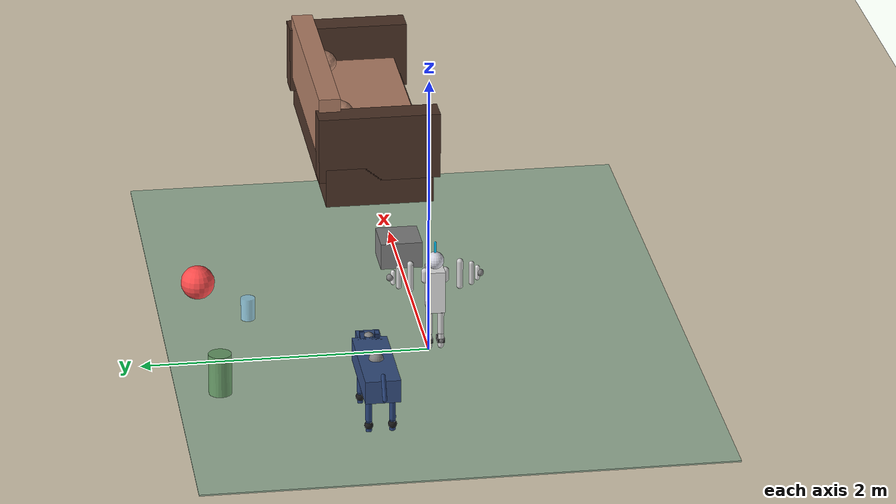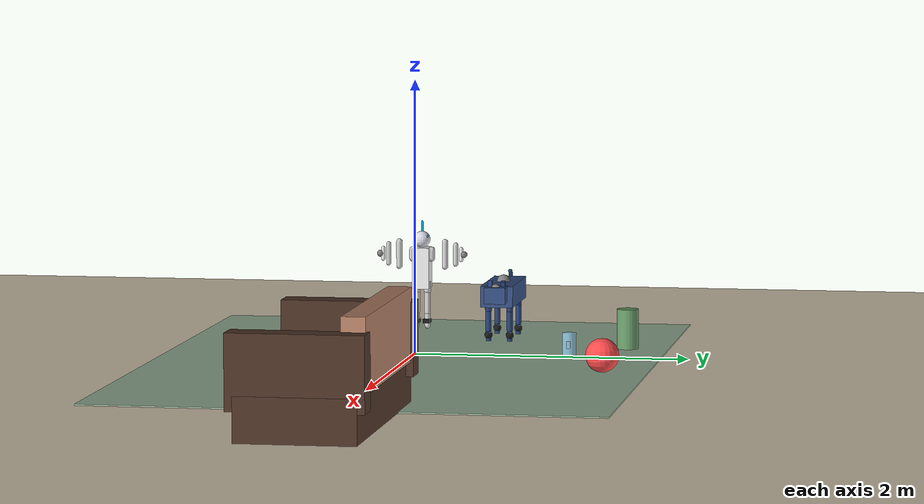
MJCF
<mujoco model="bionic_pet_companion">
  <compiler angle="degree" meshdir="../assets" autolimits="true"/>

  <visual>
    <headlight diffuse="0.6 0.6 0.6" ambient="0.3 0.3 0.3" specular="0.1 0.1 0.1"/>
    <map znear="0.01" zfar="50"/>
    <quality shadowsize="2048"/>
    <global offwidth="1280" offheight="720"/>
  </visual>

  <option timestep="0.002" gravity="0 0 -9.81" integrator="implicitfast">
    <flag contact="enable" gravity="enable"/>
  </option>

  <asset>
    <!-- Floor texture -->
    <texture name="tex_wood" type="2d" builtin="checker" width="512" height="512"
             rgb1="0.8 0.7 0.5" rgb2="0.7 0.6 0.4"/>
    <material name="mat_wood" texture="tex_wood" reflectance="0.1" shininess="0.3"/>
    <material name="mat_floor" rgba="0.85 0.8 0.7 1" reflectance="0.05"/>

    <!-- Robot materials -->
    <material name="mat_dog_body" rgba="0.2 0.3 0.5 1" specular="0.5" shininess="0.8"/>
    <material name="mat_dog_leg" rgba="0.15 0.25 0.45 1" specular="0.4" shininess="0.6"/>
    <material name="mat_dog_foot" rgba="0.1 0.1 0.1 1" specular="0.2" shininess="0.3"/>
    <material name="mat_dog_eye" rgba="0 1 0.8 1" emission="0.5"/>

    <material name="mat_human_body" rgba="0.9 0.9 0.9 1" specular="0.6" shininess="0.9"/>
    <material name="mat_human_head" rgba="0.85 0.85 0.9 1" specular="0.5" shininess="0.7"/>
    <material name="mat_human_eye" rgba="0 0.8 1 1" emission="0.5"/>
    <material name="mat_human_arm" rgba="0.8 0.8 0.8 1" specular="0.5" shininess="0.6"/>

    <!-- Sofa materials - soft plush look -->
    <material name="mat_sofa_cushion" rgba="0.7 0.5 0.4 1" specular="0.1" shininess="0.2"/>
    <material name="mat_sofa_frame" rgba="0.3 0.2 0.15 1" specular="0.3" shininess="0.5"/>
    <material name="mat_sofa_pillow" rgba="0.75 0.55 0.45 1" specular="0.1" shininess="0.1"/>

    <!-- Object materials -->
    <material name="mat_ball" rgba="1 0.3 0.3 1" specular="0.4" shininess="0.5"/>
    <material name="mat_cup" rgba="0.6 0.85 1 0.7" specular="0.8" shininess="1"/>
    <material name="mat_cup_water" rgba="0.4 0.7 1 0.6" specular="0.6" shininess="0.8"/>

    <!-- Soft/flex materials -->
    <material name="mat_flex_soft" rgba="0.9 0.5 0.4 1" specular="0.1" shininess="0.1"/>
    <material name="mat_plush" rgba="1 0.6 0.5 1" specular="0.05" shininess="0.05"/>
    <material name="mat_carpet" rgba="0.6 0.7 0.6 1" specular="0.05" shininess="0.05"/>
  </asset>

  <worldbody>
    <!-- ===== LIGHTING ===== -->
    <light name="light_main" pos="3 0 4" dir="0 0 -1" directional="true" diffuse="0.8 0.8 0.8" specular="0.2 0.2 0.2"/>
    <light name="light_fill" pos="-2 3 3" dir="0 0 -1" directional="true" diffuse="0.3 0.3 0.3" specular="0.05 0.05 0.05"/>
    <light name="light_ambient" pos="0 0 5" dir="0 0 -1" directional="true" diffuse="0.2 0.2 0.2"/>

    <!-- ===== FLOOR ===== -->
    <geom name="floor" type="plane" size="8 8 0.05" material="mat_floor" pos="0 0 0"
          friction="0.8 0.1 0.1" condim="3"/>

    <!-- ===== CARPET/RUG ===== -->
    <geom name="carpet" type="box" size="2.5 1.8 0.005" pos="0.5 0 0.002" material="mat_carpet"
          friction="1.0 0.2 0.1" condim="3"/>

    <!-- ===== SOFA (flexible composite) ===== -->
    <body name="sofa" pos="3.5 0 0">
      <!-- Sofa base frame -->
      <geom name="sofa_base" type="box" size="1.0 0.4 0.15" pos="0 0 0.15" material="mat_sofa_frame"/>

      <!-- Sofa seat cushion - soft contact for plush feel -->
      <geom name="sofa_seat" type="box" size="0.85 0.35 0.08" pos="0 0 0.35" material="mat_sofa_cushion"
            friction="0.9 0.1 0.05" solref="0.005 0.6" solimp="0.8 0.9 0.001" mass="2.0"/>

      <!-- Sofa backrest cushion - soft contact -->
      <geom name="sofa_backrest" type="box" size="0.85 0.08 0.25" pos="0 0.35 0.55" material="mat_sofa_cushion"
            friction="0.9 0.1 0.05" solref="0.005 0.6" solimp="0.8 0.9 0.001" mass="1.5"/>

      <!-- Left armrest -->
      <geom name="sofa_arm_left" type="box" size="0.1 0.45 0.25" pos="-0.9 0 0.45" material="mat_sofa_frame"/>

      <!-- Right armrest -->
      <geom name="sofa_arm_right" type="box" size="0.1 0.45 0.25" pos="0.9 0 0.45" material="mat_sofa_frame"/>
    </body>

    <!-- Decorative pillows on sofa -->
    <body name="pillow_left" pos="3.0 0.25 0.55">
      <freejoint/>
      <geom name="pillow_left_geom" type="ellipsoid" size="0.15 0.12 0.08" material="mat_sofa_pillow"
            friction="1.0 0.1 0.05" solref="0.005 0.8" solimp="0.9 0.95 0.001" mass="0.3"/>
    </body>

    <body name="pillow_right" pos="4.0 0.25 0.55">
      <freejoint/>
      <geom name="pillow_right_geom" type="ellipsoid" size="0.15 0.12 0.08" material="mat_sofa_pillow"
            friction="1.0 0.1 0.05" solref="0.005 0.8" solimp="0.9 0.95 0.001" mass="0.3"/>
    </body>

    <!-- ===== PLUSH TOY BALL ===== -->
    <body name="toy_ball" pos="1.0 1.5 0.15">
      <freejoint/>
      <geom name="ball_geom" type="sphere" size="0.12" material="mat_ball"
            friction="0.8 0.05 0.05" solref="0.005 0.8" solimp="0.8 0.95 0.001" mass="0.25"/>
    </body>

    <!-- ===== WATER CUP ===== -->
    <body name="cup" pos="0.5 1.2 0.08">
      <freejoint/>
      <!-- Cup body -->
      <geom name="cup_body" type="cylinder" size="0.05 0.08" pos="0 0 0.08" material="mat_cup"
            friction="0.5 0.05 0.05" mass="0.15"/>
      <!-- Water surface -->
      <geom name="cup_water" type="cylinder" size="0.04 0.005" pos="0 0 0.14" material="mat_cup_water"
            mass="0.02"/>
      <!-- Cup handle as a box -->
      <geom name="cup_handle" type="box" size="0.015 0.012 0.025" pos="0.06 0 0.08"
            material="mat_cup" mass="0.02"/>
    </body>

    <!-- ===== UNITREE GO1 ROBOT DOG ===== -->
    <body name="robot_dog" pos="-1.0 0.5 0.35">
      <joint name="dog_root" type="free"/>
      <inertial pos="0 0 0" mass="5.0" fullinertia="0.05 0.15 0.15 0 0 0"/>

      <!-- Main body -->
      <geom name="dog_body" type="box" size="0.35 0.12 0.08" material="mat_dog_body"
            friction="0.5 0.05 0.05"/>
      <!-- Head -->
      <geom name="dog_head" type="box" size="0.08 0.08 0.06" pos="0.38 0 0.02" material="mat_dog_body"/>
      <!-- Eyes -->
      <geom name="dog_eye_l" type="sphere" size="0.015" pos="0.42 0.04 0.05" material="mat_dog_eye"/>
      <geom name="dog_eye_r" type="sphere" size="0.015" pos="0.42 -0.04 0.05" material="mat_dog_eye"/>
      <!-- Ears -->
      <geom name="dog_ear_l" type="box" size="0.02 0.015 0.04" pos="0.35 0.05 0.08" euler="0 15 0" material="mat_dog_leg"/>
      <geom name="dog_ear_r" type="box" size="0.02 0.015 0.04" pos="0.35 -0.05 0.08" euler="0 -15 0" material="mat_dog_leg"/>
      <!-- Tail -->
      <geom name="dog_tail" type="capsule" size="0.015 0.08" pos="-0.39 0 0.05" euler="0 30 0" material="mat_dog_leg"/>

      <!-- ===== LEGS (each with 3 DOF: hip, thigh, knee) ===== -->
      <!-- FRONT LEFT LEG -->
      <body name="dog_fl_hip" pos="0.22 0.08 -0.05">
        <joint name="dog_fl_hip_x" type="hinge" axis="1 0 0" range="-30 30" armature="0.01"/>
        <joint name="dog_fl_hip_z" type="hinge" axis="0 0 1" range="-60 60" armature="0.01"/>
        <geom name="dog_fl_hip_geom" type="capsule" size="0.025 0.04" pos="0 0 -0.02" material="mat_dog_leg" friction="0.5 0.05 0.05"/>
        <body name="dog_fl_thigh" pos="0 0 -0.06">
          <joint name="dog_fl_knee" type="hinge" axis="0 1 0" range="-100 30" armature="0.01"/>
          <geom name="dog_fl_thigh_geom" type="capsule" size="0.022 0.1" pos="0 0 -0.05" material="mat_dog_leg" friction="0.5 0.05 0.05"/>
          <body name="dog_fl_shank" pos="0 0 -0.1">
            <geom name="dog_fl_shank_geom" type="capsule" size="0.02 0.09" pos="0 0 -0.04" material="mat_dog_leg" friction="0.5 0.05 0.05"/>
            <geom name="dog_fl_foot" type="sphere" size="0.03" pos="0 0 -0.09" material="mat_dog_foot"
                        friction="0.9 0.1 0.05" solref="0.005 0.7" solimp="0.8 0.9 0.001"/>
            <site name="dog_fl_touch" type="sphere" size="0.03" pos="0 0 -0.09"/>
          </body>
        </body>
      </body>

      <!-- FRONT RIGHT LEG -->
      <body name="dog_fr_hip" pos="0.22 -0.08 -0.05">
        <joint name="dog_fr_hip_x" type="hinge" axis="1 0 0" range="-30 30" armature="0.01"/>
        <joint name="dog_fr_hip_z" type="hinge" axis="0 0 1" range="-60 60" armature="0.01"/>
        <geom name="dog_fr_hip_geom" type="capsule" size="0.025 0.04" pos="0 0 -0.02" material="mat_dog_leg" friction="0.5 0.05 0.05"/>
        <body name="dog_fr_thigh" pos="0 0 -0.06">
          <joint name="dog_fr_knee" type="hinge" axis="0 1 0" range="-100 30" armature="0.01"/>
          <geom name="dog_fr_thigh_geom" type="capsule" size="0.022 0.1" pos="0 0 -0.05" material="mat_dog_leg" friction="0.5 0.05 0.05"/>
          <body name="dog_fr_shank" pos="0 0 -0.1">
            <geom name="dog_fr_shank_geom" type="capsule" size="0.02 0.09" pos="0 0 -0.04" material="mat_dog_leg" friction="0.5 0.05 0.05"/>
            <geom name="dog_fr_foot" type="sphere" size="0.03" pos="0 0 -0.09" material="mat_dog_foot"
                        friction="0.9 0.1 0.05" solref="0.005 0.7" solimp="0.8 0.9 0.001"/>
            <site name="dog_fr_touch" type="sphere" size="0.03" pos="0 0 -0.09"/>
          </body>
        </body>
      </body>

      <!-- REAR LEFT LEG -->
      <body name="dog_rl_hip" pos="-0.22 0.08 -0.05">
        <joint name="dog_rl_hip_x" type="hinge" axis="1 0 0" range="-30 30" armature="0.01"/>
        <joint name="dog_rl_hip_z" type="hinge" axis="0 0 1" range="-60 60" armature="0.01"/>
        <geom name="dog_rl_hip_geom" type="capsule" size="0.025 0.04" pos="0 0 -0.02" material="mat_dog_leg" friction="0.5 0.05 0.05"/>
        <body name="dog_rl_thigh" pos="0 0 -0.06">
          <joint name="dog_rl_knee" type="hinge" axis="0 1 0" range="-100 30" armature="0.01"/>
          <geom name="dog_rl_thigh_geom" type="capsule" size="0.022 0.1" pos="0 0 -0.05" material="mat_dog_leg" friction="0.5 0.05 0.05"/>
          <body name="dog_rl_shank" pos="0 0 -0.1">
            <geom name="dog_rl_shank_geom" type="capsule" size="0.02 0.09" pos="0 0 -0.04" material="mat_dog_leg" friction="0.5 0.05 0.05"/>
            <geom name="dog_rl_foot" type="sphere" size="0.03" pos="0 0 -0.09" material="mat_dog_foot"
                        friction="0.9 0.1 0.05" solref="0.005 0.7" solimp="0.8 0.9 0.001"/>
            <site name="dog_rl_touch" type="sphere" size="0.03" pos="0 0 -0.09"/>
          </body>
        </body>
      </body>

      <!-- REAR RIGHT LEG -->
      <body name="dog_rr_hip" pos="-0.22 -0.08 -0.05">
        <joint name="dog_rr_hip_x" type="hinge" axis="1 0 0" range="-30 30" armature="0.01"/>
        <joint name="dog_rr_hip_z" type="hinge" axis="0 0 1" range="-60 60" armature="0.01"/>
        <geom name="dog_rr_hip_geom" type="capsule" size="0.025 0.04" pos="0 0 -0.02" material="mat_dog_leg" friction="0.5 0.05 0.05"/>
        <body name="dog_rr_thigh" pos="0 0 -0.06">
          <joint name="dog_rr_knee" type="hinge" axis="0 1 0" range="-100 30" armature="0.01"/>
          <geom name="dog_rr_thigh_geom" type="capsule" size="0.022 0.1" pos="0 0 -0.05" material="mat_dog_leg" friction="0.5 0.05 0.05"/>
          <body name="dog_rr_shank" pos="0 0 -0.1">
            <geom name="dog_rr_shank_geom" type="capsule" size="0.02 0.09" pos="0 0 -0.04" material="mat_dog_leg" friction="0.5 0.05 0.05"/>
            <geom name="dog_rr_foot" type="sphere" size="0.03" pos="0 0 -0.09" material="mat_dog_foot"
                        friction="0.9 0.1 0.05" solref="0.005 0.7" solimp="0.8 0.9 0.001"/>
            <site name="dog_rr_touch" type="sphere" size="0.03" pos="0 0 -0.09"/>
          </body>
        </body>
      </body>

      <!-- Body touch sensors -->
      <site name="dog_body_touch" type="sphere" size="0.05" pos="0 0 0.08"/>
      <site name="dog_head_touch" type="sphere" size="0.04" pos="0.38 0 0.06"/>
    </body>

    <!-- ===== HUMANOID COMPANION ROBOT ===== -->
    <body name="humanoid" pos="-0.3 0 0.45">
      <joint name="humanoid_root" type="free"/>
      <inertial pos="0 0 0.15" mass="3.0" fullinertia="0.02 0.04 0.04 0 0 0"/>

      <!-- Torso -->
      <geom name="human_torso" type="box" size="0.08 0.06 0.15" pos="0 0 0.15" material="mat_human_body"
            friction="0.5 0.05 0.05"/>

      <!-- Head -->
      <body name="human_head" pos="0 0 0.32">
        <joint name="human_neck" type="hinge" axis="0 0 1" range="-45 45" armature="0.005"/>
        <geom name="human_head_geom" type="sphere" size="0.06" pos="0 0 0.04" material="mat_human_head"/>
        <geom name="human_eye_l" type="sphere" size="0.012" pos="0.025 0.04 0.06" material="mat_human_eye"/>
        <geom name="human_eye_r" type="sphere" size="0.012" pos="0.025 -0.04 0.06" material="mat_human_eye"/>
        <!-- Antenna -->
        <geom name="human_antenna" type="capsule" size="0.008 0.05" pos="0 0 0.12" material="mat_human_eye"/>
        <!-- Head touch sensor -->
        <site name="human_head_touch" type="sphere" size="0.06" pos="0 0 0.04"/>
      </body>

      <!-- LEFT ARM -->
      <body name="human_la_shoulder" pos="0 0.07 0.25">
        <joint name="human_la_shoulder_x" type="hinge" axis="1 0 0" range="-90 60" armature="0.005"/>
        <joint name="human_la_shoulder_z" type="hinge" axis="0 0 1" range="-180 30" armature="0.005"/>
        <geom name="human_la_shoulder_geom" type="capsule" size="0.025 0.03" material="mat_human_arm"/>
        <body name="human_la_elbow" pos="0 0.06 0">
          <joint name="human_la_elbow" type="hinge" axis="0 1 0" range="-120 5" armature="0.005"/>
          <geom name="human_la_upper_geom" type="capsule" size="0.022 0.09" pos="0 0.04 0" material="mat_human_arm"/>
          <body name="human_la_hand" pos="0 0.09 0">
            <geom name="human_la_hand_geom" type="capsule" size="0.018 0.07" pos="0 0.03 0" material="mat_human_arm"/>
            <geom name="human_la_gripper" type="capsule" size="0.015 0.04" pos="0 0.07 0" material="mat_human_body" friction="0.8 0.1 0.05"/>
            <!-- Hand touch sensor -->
            <site name="human_la_touch" type="sphere" size="0.025" pos="0 0.09 0"/>
          </body>
        </body>
      </body>

      <!-- RIGHT ARM -->
      <body name="human_ra_shoulder" pos="0 -0.07 0.25">
        <joint name="human_ra_shoulder_x" type="hinge" axis="1 0 0" range="-90 60" armature="0.005"/>
        <joint name="human_ra_shoulder_z" type="hinge" axis="0 0 1" range="-30 180" armature="0.005"/>
        <geom name="human_ra_shoulder_geom" type="capsule" size="0.025 0.03" material="mat_human_arm"/>
        <body name="human_ra_elbow" pos="0 -0.06 0">
          <joint name="human_ra_elbow" type="hinge" axis="0 1 0" range="-120 5" armature="0.005"/>
          <geom name="human_ra_upper_geom" type="capsule" size="0.022 0.09" pos="0 -0.04 0" material="mat_human_arm"/>
          <body name="human_ra_hand" pos="0 -0.09 0">
            <geom name="human_ra_hand_geom" type="capsule" size="0.018 0.07" pos="0 -0.03 0" material="mat_human_arm"/>
            <geom name="human_ra_gripper" type="capsule" size="0.015 0.04" pos="0 -0.07 0" material="mat_human_body" friction="0.8 0.1 0.05"/>
            <site name="human_ra_touch" type="sphere" size="0.025" pos="0 -0.09 0"/>
          </body>
        </body>
      </body>

      <!-- LEFT LEG -->
      <body name="human_ll_hip" pos="0 0.04 0.02">
        <joint name="human_ll_hip_x" type="hinge" axis="1 0 0" range="-45 45" armature="0.008"/>
        <joint name="human_ll_hip_z" type="hinge" axis="0 0 1" range="-30 60" armature="0.008"/>
        <geom name="human_ll_hip_geom" type="capsule" size="0.025 0.03" pos="0 0 -0.01" material="mat_human_arm"/>
        <body name="human_ll_knee" pos="0 0 -0.05">
          <joint name="human_ll_knee" type="hinge" axis="0 1 0" range="-5 100" armature="0.008"/>
          <geom name="human_ll_thigh_geom" type="capsule" size="0.022 0.1" pos="0 0 -0.05" material="mat_human_arm"/>
          <body name="human_ll_foot" pos="0 0 -0.1">
            <geom name="human_ll_shank_geom" type="capsule" size="0.02 0.1" pos="0 0 -0.05" material="mat_human_arm"/>
            <geom name="human_ll_foot_geom" type="box" size="0.04 0.025 0.015" pos="0.02 0 -0.11" material="mat_dog_foot" friction="0.9 0.1 0.05"/>
            <site name="human_ll_touch" type="sphere" size="0.025" pos="0 0 -0.11"/>
          </body>
        </body>
      </body>

      <!-- RIGHT LEG -->
      <body name="human_rl_hip" pos="0 -0.04 0.02">
        <joint name="human_rl_hip_x" type="hinge" axis="1 0 0" range="-45 45" armature="0.008"/>
        <joint name="human_rl_hip_z" type="hinge" axis="0 0 1" range="-60 30" armature="0.008"/>
        <geom name="human_rl_hip_geom" type="capsule" size="0.025 0.03" pos="0 0 -0.01" material="mat_human_arm"/>
        <body name="human_rl_knee" pos="0 0 -0.05">
          <joint name="human_rl_knee" type="hinge" axis="0 1 0" range="-5 100" armature="0.008"/>
          <geom name="human_rl_thigh_geom" type="capsule" size="0.022 0.1" pos="0 0 -0.05" material="mat_human_arm"/>
          <body name="human_rl_foot" pos="0 0 -0.1">
            <geom name="human_rl_shank_geom" type="capsule" size="0.02 0.1" pos="0 0 -0.05" material="mat_human_arm"/>
            <geom name="human_rl_foot_geom" type="box" size="0.04 0.025 0.015" pos="0.02 0 -0.11" material="mat_dog_foot" friction="0.9 0.1 0.05"/>
            <site name="human_rl_touch" type="sphere" size="0.025" pos="0 0 -0.11"/>
          </body>
        </body>
      </body>

      <!-- Body touch sensor -->
      <site name="human_body_touch" type="sphere" size="0.05" pos="0 0 0.15"/>
    </body>

    <!-- ===== SMALL OBSTACLES (boxes, etc.) ===== -->
    <body name="obstacle_box" pos="1.5 0 0.1">
      <freejoint/>
      <geom name="obstacle_geom" type="box" size="0.15 0.15 0.1" rgba="0.5 0.5 0.5 1"
            friction="0.6 0.05 0.05" mass="0.5"/>
    </body>

    <body name="obstacle_cylinder" pos="-0.5 1.5 0.15">
      <freejoint/>
      <geom name="obstacle_cyl_geom" type="cylinder" size="0.08 0.15" rgba="0.4 0.6 0.4 1"
            friction="0.6 0.05 0.05" mass="0.3"/>
    </body>

    <!-- ===== CAMERAS ===== -->
    <camera name="tracking" mode="fixed" pos="3 5 4" quat="0.55 0.45 0 0"/>
  </worldbody>

  <!-- ===== ACTUATORS ===== -->
  <actuator>
    <!-- Robot Dog actuators -->
    <position name="dog_fl_hip_x_act" joint="dog_fl_hip_x" kp="100" kv="10" forcerange="-50 50"/>
    <position name="dog_fl_hip_z_act" joint="dog_fl_hip_z" kp="100" kv="10" forcerange="-50 50"/>
    <position name="dog_fl_knee_act" joint="dog_fl_knee" kp="100" kv="10" forcerange="-50 50"/>
    <position name="dog_fr_hip_x_act" joint="dog_fr_hip_x" kp="100" kv="10" forcerange="-50 50"/>
    <position name="dog_fr_hip_z_act" joint="dog_fr_hip_z" kp="100" kv="10" forcerange="-50 50"/>
    <position name="dog_fr_knee_act" joint="dog_fr_knee" kp="100" kv="10" forcerange="-50 50"/>
    <position name="dog_rl_hip_x_act" joint="dog_rl_hip_x" kp="100" kv="10" forcerange="-50 50"/>
    <position name="dog_rl_hip_z_act" joint="dog_rl_hip_z" kp="100" kv="10" forcerange="-50 50"/>
    <position name="dog_rl_knee_act" joint="dog_rl_knee" kp="100" kv="10" forcerange="-50 50"/>
    <position name="dog_rr_hip_x_act" joint="dog_rr_hip_x" kp="100" kv="10" forcerange="-50 50"/>
    <position name="dog_rr_hip_z_act" joint="dog_rr_hip_z" kp="100" kv="10" forcerange="-50 50"/>
    <position name="dog_rr_knee_act" joint="dog_rr_knee" kp="100" kv="10" forcerange="-50 50"/>

    <!-- Humanoid actuators -->
    <position name="human_neck_act" joint="human_neck" kp="50" kv="5" forcerange="-20 20"/>
    <position name="human_la_shoulder_x_act" joint="human_la_shoulder_x" kp="80" kv="8" forcerange="-30 30"/>
    <position name="human_la_shoulder_z_act" joint="human_la_shoulder_z" kp="80" kv="8" forcerange="-30 30"/>
    <position name="human_la_elbow_act" joint="human_la_elbow" kp="80" kv="8" forcerange="-30 30"/>
    <position name="human_ra_shoulder_x_act" joint="human_ra_shoulder_x" kp="80" kv="8" forcerange="-30 30"/>
    <position name="human_ra_shoulder_z_act" joint="human_ra_shoulder_z" kp="80" kv="8" forcerange="-30 30"/>
    <position name="human_ra_elbow_act" joint="human_ra_elbow" kp="80" kv="8" forcerange="-30 30"/>
    <position name="human_ll_hip_x_act" joint="human_ll_hip_x" kp="100" kv="10" forcerange="-30 30"/>
    <position name="human_ll_hip_z_act" joint="human_ll_hip_z" kp="100" kv="10" forcerange="-30 30"/>
    <position name="human_ll_knee_act" joint="human_ll_knee" kp="100" kv="10" forcerange="-30 30"/>
    <position name="human_rl_hip_x_act" joint="human_rl_hip_x" kp="100" kv="10" forcerange="-30 30"/>
    <position name="human_rl_hip_z_act" joint="human_rl_hip_z" kp="100" kv="10" forcerange="-30 30"/>
    <position name="human_rl_knee_act" joint="human_rl_knee" kp="100" kv="10" forcerange="-30 30"/>
  </actuator>

  <!-- ===== SENSORS (touch/tactile) ===== -->
  <sensor>
    <!-- Touch sensors on robot dog feet -->
    <touch name="dog_fl_touch_sensor" site="dog_fl_touch"/>
    <touch name="dog_fr_touch_sensor" site="dog_fr_touch"/>
    <touch name="dog_rl_touch_sensor" site="dog_rl_touch"/>
    <touch name="dog_rr_touch_sensor" site="dog_rr_touch"/>
    <touch name="dog_body_touch_sensor" site="dog_body_touch"/>
    <touch name="dog_head_touch_sensor" site="dog_head_touch"/>

    <!-- Touch sensors on humanoid -->
    <touch name="human_head_touch_sensor" site="human_head_touch"/>
    <touch name="human_la_touch_sensor" site="human_la_touch"/>
    <touch name="human_ra_touch_sensor" site="human_ra_touch"/>
    <touch name="human_ll_touch_sensor" site="human_ll_touch"/>
    <touch name="human_rl_touch_sensor" site="human_rl_touch"/>
    <touch name="human_body_touch_sensor" site="human_body_touch"/>

    <!-- Position sensors for controllers -->
    <framepos name="dog_pos" objtype="body" objname="robot_dog"/>
    <framequat name="dog_quat" objtype="body" objname="robot_dog"/>
    <framepos name="human_pos" objtype="body" objname="humanoid"/>
    <framequat name="human_quat" objtype="body" objname="humanoid"/>
    <framepos name="ball_pos" objtype="body" objname="toy_ball"/>
    <framepos name="cup_pos" objtype="body" objname="cup"/>
  </sensor>

  </mujoco>
